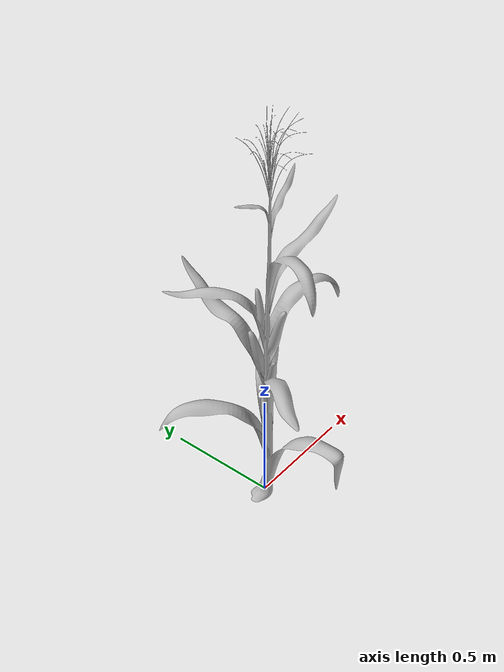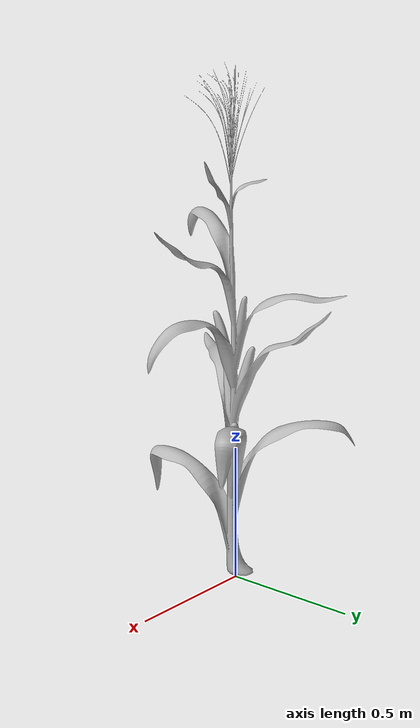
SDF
<?xml version="1.0" ?>
<sdf version="1.5">
  <model name="corn_stalk">
    <static>true</static>
    <link name="corn_stalk_link">
      <pose>0 0 0 0 0 0</pose>
        <collision name="collision">
        <geometry>
          <box>
            <size>0.1 0.1 1.7</size>
          </box>
        </geometry>
      </collision>
      <visual name="visual">
        <cast_shadows>true</cast_shadows>
        <geometry>
          <mesh>
              <uri>model://corn_type1/meshes/corn_stack.stl</uri>
            <scale>0.01 0.01 0.01</scale>
          </mesh>
        </geometry>
        <material>
          <script>
            <uri>model://corn_type1/materials/scripts</uri>
            <uri>model://corn_type1/materials/textures</uri>
            <name>corn_type1/Diffuse</name>
          </script>
        </material>
      </visual>
    </link>
  </model>
</sdf>
